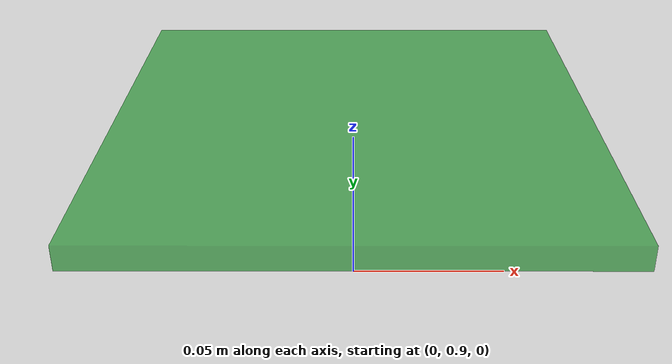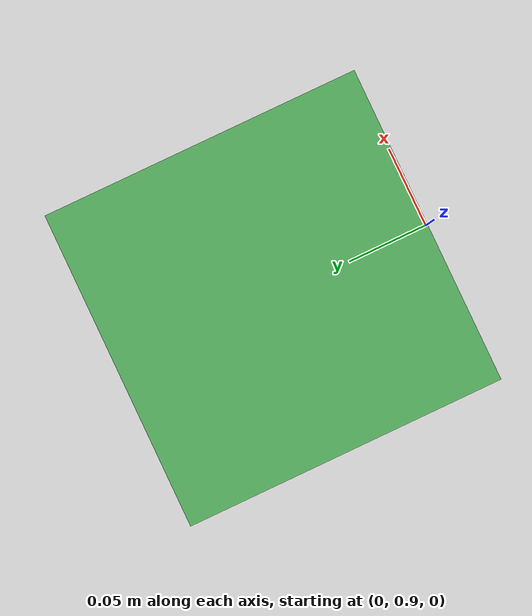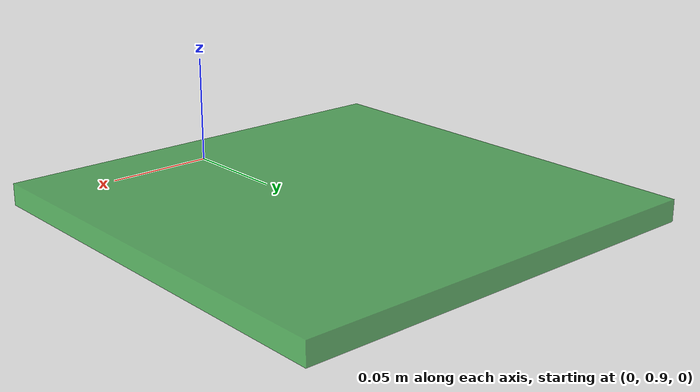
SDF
<?xml version="1.0"?>
<sdf version="1.5">
  <model name="goal_box">
    <static>0</static>
    <pose>0 1 0.005 0 0 0</pose>
    <link name="goal_box">

      <inertial>
        <mass>1</mass>
        <inertia>
          <ixx>0.0166667</ixx>
          <iyy>0.0166667</iyy>
          <izz>0.0166667</izz>
          <ixy>0.0</ixy>
          <ixz>0.0</ixz>
          <iyz>0.0</iyz>
        </inertia>
      </inertial>

      <visual name="goal_box">
        <transparency>0.3</transparency>
        <geometry>
          <box>
            <size>0.2 0.2 0.01</size> <!-- 1 cm high -->
          </box>
        </geometry>
        <material>
          <script>
            <uri>file://media/materials/scripts/gazebo.material</uri>
            <name>Gazebo/Green</name>
          </script>
        </material>
      </visual>

      <collision name="collision">
        <geometry>
          <box>
            <size>0.2 0.2 0.01</size>
          </box>
        </geometry>
        <surface>
          <friction>
            <ode>
              <mu>0</mu>
              <mu2>0</mu2>
            </ode>
          </friction>
        </surface>
      </collision>

    </link>
  </model>
</sdf>
